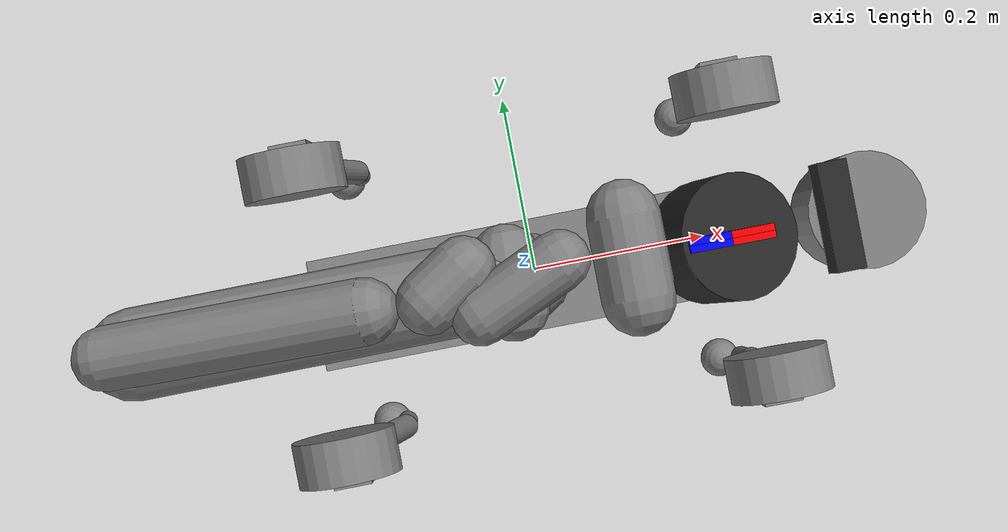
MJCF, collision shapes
<mujoco model="go2">
  <compiler angle="radian"/>

  <option impratio="100" cone="elliptic"/>

  <size nkey="2"/>

  <default>
    <default class="go2">
      <joint armature="0.01" damping="0.1" frictionloss="0.2"/>
      <geom condim="1" friction="0.4" margin="0.001"/>
      <general ctrlrange="-23.7 23.7"/>
      <default class="abduction">
        <joint range="-1.0472 1.0472"/>
      </default>
      <default class="hip">
        <default class="front_hip">
          <joint range="-1.5708 3.4907"/>
        </default>
        <default class="back_hip">
          <joint range="-0.5236 4.5379"/>
        </default>
      </default>
      <default class="knee">
        <joint range="-2.7227 -0.83776"/>
        <general ctrlrange="-45.43 45.43"/>
      </default>
      <default class="visual">
        <geom type="mesh" contype="0" conaffinity="0" group="2"/>
      </default>
      <default class="collision">
        <geom group="3"/>
        <default class="foot">
          <geom size="0.022 0 0" condim="6" priority="1" friction="0.8 0.02 0.01"/>
        </default>
      </default>
    </default>
    <default class="piper_main">
      <default class="piper_piper">
        <joint armature="0.005" frictionloss="0.3"/>
        <general forcerange="-100 100" biastype="affine" biasprm="0 -1"/>
        <default class="piper_finger">
          <joint type="slide" frictionloss="0"/>
          <general forcerange="-10 10"/>
        </default>
        <default class="piper_visual">
          <geom type="mesh" contype="0" conaffinity="0" group="2" density="0"/>
        </default>
        <default class="piper_collision">
          <geom type="capsule" group="3"/>
        </default>
      </default>
    </default>
  </default>

  <asset>
    <material name="metal" rgba="0.9 0.95 0.95 1"/>
    <material name="black" rgba="0 0 0 1"/>
    <material name="white"/>
    <material name="gray" rgba="0.671705 0.692426 0.77427 1"/>
    <material name="piper_gray_mat" rgba="0.59 0.59 0.59 1"/>
    <material name="piper_light_gray_mat" rgba="0.98 0.98 0.98 1"/>
    <material name="piper_light_medium_gray_mat" rgba="0.85 0.85 0.85 1"/>
    <material name="piper_dark_gray_mat" rgba="0.086 0.086 0.086 1"/>
    <material name="piper_darker_gray_mat" rgba="0.14 0.14 0.14 1"/>
    <material name="piper_white_mat"/>
    <material name="piper_red_mat" rgba="0.82 0.15 0.15 1"/>
    <material name="piper_black_mat" rgba="0 0 0 1"/>
    <material name="piper_light_blue" rgba="0.79 0.82 0.93 1"/>
    <mesh name="base_0" file="/media/fishyu/fish-14tb-2/YuXi/go2armagent/vector-os-nano/vector_os_nano/hardware/sim/mjcf/go2/assets/base_0.obj"/>
    <mesh name="base_1" file="/media/fishyu/fish-14tb-2/YuXi/go2armagent/vector-os-nano/vector_os_nano/hardware/sim/mjcf/go2/assets/base_1.obj"/>
    <mesh name="base_2" file="/media/fishyu/fish-14tb-2/YuXi/go2armagent/vector-os-nano/vector_os_nano/hardware/sim/mjcf/go2/assets/base_2.obj"/>
    <mesh name="base_3" file="/media/fishyu/fish-14tb-2/YuXi/go2armagent/vector-os-nano/vector_os_nano/hardware/sim/mjcf/go2/assets/base_3.obj"/>
    <mesh name="base_4" file="/media/fishyu/fish-14tb-2/YuXi/go2armagent/vector-os-nano/vector_os_nano/hardware/sim/mjcf/go2/assets/base_4.obj"/>
    <mesh name="hip_0" file="/media/fishyu/fish-14tb-2/YuXi/go2armagent/vector-os-nano/vector_os_nano/hardware/sim/mjcf/go2/assets/hip_0.obj"/>
    <mesh name="hip_1" file="/media/fishyu/fish-14tb-2/YuXi/go2armagent/vector-os-nano/vector_os_nano/hardware/sim/mjcf/go2/assets/hip_1.obj"/>
    <mesh name="thigh_0" file="/media/fishyu/fish-14tb-2/YuXi/go2armagent/vector-os-nano/vector_os_nano/hardware/sim/mjcf/go2/assets/thigh_0.obj"/>
    <mesh name="thigh_1" file="/media/fishyu/fish-14tb-2/YuXi/go2armagent/vector-os-nano/vector_os_nano/hardware/sim/mjcf/go2/assets/thigh_1.obj"/>
    <mesh name="thigh_mirror_0" file="/media/fishyu/fish-14tb-2/YuXi/go2armagent/vector-os-nano/vector_os_nano/hardware/sim/mjcf/go2/assets/thigh_mirror_0.obj"/>
    <mesh name="thigh_mirror_1" file="/media/fishyu/fish-14tb-2/YuXi/go2armagent/vector-os-nano/vector_os_nano/hardware/sim/mjcf/go2/assets/thigh_mirror_1.obj"/>
    <mesh name="calf_0" file="/media/fishyu/fish-14tb-2/YuXi/go2armagent/vector-os-nano/vector_os_nano/hardware/sim/mjcf/go2/assets/calf_0.obj"/>
    <mesh name="calf_1" file="/media/fishyu/fish-14tb-2/YuXi/go2armagent/vector-os-nano/vector_os_nano/hardware/sim/mjcf/go2/assets/calf_1.obj"/>
    <mesh name="calf_mirror_0" file="/media/fishyu/fish-14tb-2/YuXi/go2armagent/vector-os-nano/vector_os_nano/hardware/sim/mjcf/go2/assets/calf_mirror_0.obj"/>
    <mesh name="calf_mirror_1" file="/media/fishyu/fish-14tb-2/YuXi/go2armagent/vector-os-nano/vector_os_nano/hardware/sim/mjcf/go2/assets/calf_mirror_1.obj"/>
    <mesh name="foot" file="/media/fishyu/fish-14tb-2/YuXi/go2armagent/vector-os-nano/vector_os_nano/hardware/sim/mjcf/go2/assets/foot.obj"/>
    <mesh name="piper_link2_0" file="/media/fishyu/fish-14tb-2/YuXi/go2armagent/vector-os-nano/vector_os_nano/hardware/sim/mjcf/piper/assets/link2_0.obj"/>
    <mesh name="piper_link2_1" file="/media/fishyu/fish-14tb-2/YuXi/go2armagent/vector-os-nano/vector_os_nano/hardware/sim/mjcf/piper/assets/link2_1.obj"/>
    <mesh name="piper_link2_2" file="/media/fishyu/fish-14tb-2/YuXi/go2armagent/vector-os-nano/vector_os_nano/hardware/sim/mjcf/piper/assets/link2_2.obj"/>
    <mesh name="piper_link2_3" file="/media/fishyu/fish-14tb-2/YuXi/go2armagent/vector-os-nano/vector_os_nano/hardware/sim/mjcf/piper/assets/link2_3.obj"/>
    <mesh name="piper_link2_4" file="/media/fishyu/fish-14tb-2/YuXi/go2armagent/vector-os-nano/vector_os_nano/hardware/sim/mjcf/piper/assets/link2_4.obj"/>
    <mesh name="piper_link2_5" file="/media/fishyu/fish-14tb-2/YuXi/go2armagent/vector-os-nano/vector_os_nano/hardware/sim/mjcf/piper/assets/link2_5.obj"/>
    <mesh name="piper_link2_6" file="/media/fishyu/fish-14tb-2/YuXi/go2armagent/vector-os-nano/vector_os_nano/hardware/sim/mjcf/piper/assets/link2_6.obj"/>
    <mesh name="piper_link2_7" file="/media/fishyu/fish-14tb-2/YuXi/go2armagent/vector-os-nano/vector_os_nano/hardware/sim/mjcf/piper/assets/link2_7.obj"/>
    <mesh name="piper_link2_8" file="/media/fishyu/fish-14tb-2/YuXi/go2armagent/vector-os-nano/vector_os_nano/hardware/sim/mjcf/piper/assets/link2_8.obj"/>
    <mesh name="piper_link2_9" file="/media/fishyu/fish-14tb-2/YuXi/go2armagent/vector-os-nano/vector_os_nano/hardware/sim/mjcf/piper/assets/link2_9.obj"/>
    <mesh name="piper_link2_10" file="/media/fishyu/fish-14tb-2/YuXi/go2armagent/vector-os-nano/vector_os_nano/hardware/sim/mjcf/piper/assets/link2_10.obj"/>
    <mesh name="piper_link2_11" file="/media/fishyu/fish-14tb-2/YuXi/go2armagent/vector-os-nano/vector_os_nano/hardware/sim/mjcf/piper/assets/link2_11.obj"/>
    <mesh name="piper_link2_12" file="/media/fishyu/fish-14tb-2/YuXi/go2armagent/vector-os-nano/vector_os_nano/hardware/sim/mjcf/piper/assets/link2_12.obj"/>
    <mesh name="piper_link2_13" file="/media/fishyu/fish-14tb-2/YuXi/go2armagent/vector-os-nano/vector_os_nano/hardware/sim/mjcf/piper/assets/link2_13.obj"/>
    <mesh name="piper_link2_14" file="/media/fishyu/fish-14tb-2/YuXi/go2armagent/vector-os-nano/vector_os_nano/hardware/sim/mjcf/piper/assets/link2_14.obj"/>
    <mesh name="piper_link2_15" file="/media/fishyu/fish-14tb-2/YuXi/go2armagent/vector-os-nano/vector_os_nano/hardware/sim/mjcf/piper/assets/link2_15.obj"/>
    <mesh name="piper_link2_16" file="/media/fishyu/fish-14tb-2/YuXi/go2armagent/vector-os-nano/vector_os_nano/hardware/sim/mjcf/piper/assets/link2_16.obj"/>
    <mesh name="piper_link2_17" file="/media/fishyu/fish-14tb-2/YuXi/go2armagent/vector-os-nano/vector_os_nano/hardware/sim/mjcf/piper/assets/link2_17.obj"/>
    <mesh name="piper_link2_18" file="/media/fishyu/fish-14tb-2/YuXi/go2armagent/vector-os-nano/vector_os_nano/hardware/sim/mjcf/piper/assets/link2_18.obj"/>
    <mesh name="piper_link2_19" file="/media/fishyu/fish-14tb-2/YuXi/go2armagent/vector-os-nano/vector_os_nano/hardware/sim/mjcf/piper/assets/link2_19.obj"/>
    <mesh name="piper_link2_20" file="/media/fishyu/fish-14tb-2/YuXi/go2armagent/vector-os-nano/vector_os_nano/hardware/sim/mjcf/piper/assets/link2_20.obj"/>
    <mesh name="piper_link2_21" file="/media/fishyu/fish-14tb-2/YuXi/go2armagent/vector-os-nano/vector_os_nano/hardware/sim/mjcf/piper/assets/link2_21.obj"/>
    <mesh name="piper_link2_22" file="/media/fishyu/fish-14tb-2/YuXi/go2armagent/vector-os-nano/vector_os_nano/hardware/sim/mjcf/piper/assets/link2_22.obj"/>
    <mesh name="piper_link2_23" file="/media/fishyu/fish-14tb-2/YuXi/go2armagent/vector-os-nano/vector_os_nano/hardware/sim/mjcf/piper/assets/link2_23.obj"/>
    <mesh name="piper_link2_24" file="/media/fishyu/fish-14tb-2/YuXi/go2armagent/vector-os-nano/vector_os_nano/hardware/sim/mjcf/piper/assets/link2_24.obj"/>
    <mesh name="piper_link2_25" file="/media/fishyu/fish-14tb-2/YuXi/go2armagent/vector-os-nano/vector_os_nano/hardware/sim/mjcf/piper/assets/link2_25.obj"/>
    <mesh name="piper_link2_26" file="/media/fishyu/fish-14tb-2/YuXi/go2armagent/vector-os-nano/vector_os_nano/hardware/sim/mjcf/piper/assets/link2_26.obj"/>
    <mesh name="piper_link2_27" file="/media/fishyu/fish-14tb-2/YuXi/go2armagent/vector-os-nano/vector_os_nano/hardware/sim/mjcf/piper/assets/link2_27.obj"/>
    <mesh name="piper_link2_28" file="/media/fishyu/fish-14tb-2/YuXi/go2armagent/vector-os-nano/vector_os_nano/hardware/sim/mjcf/piper/assets/link2_28.obj"/>
    <mesh name="piper_link2_29" file="/media/fishyu/fish-14tb-2/YuXi/go2armagent/vector-os-nano/vector_os_nano/hardware/sim/mjcf/piper/assets/link2_29.obj"/>
    <mesh name="piper_link2_30" file="/media/fishyu/fish-14tb-2/YuXi/go2armagent/vector-os-nano/vector_os_nano/hardware/sim/mjcf/piper/assets/link2_30.obj"/>
    <mesh name="piper_link2_31" file="/media/fishyu/fish-14tb-2/YuXi/go2armagent/vector-os-nano/vector_os_nano/hardware/sim/mjcf/piper/assets/link2_31.obj"/>
    <mesh name="piper_link3_0" file="/media/fishyu/fish-14tb-2/YuXi/go2armagent/vector-os-nano/vector_os_nano/hardware/sim/mjcf/piper/assets/link3_0.obj"/>
    <mesh name="piper_link3_1" file="/media/fishyu/fish-14tb-2/YuXi/go2armagent/vector-os-nano/vector_os_nano/hardware/sim/mjcf/piper/assets/link3_1.obj"/>
    <mesh name="piper_link3_2" file="/media/fishyu/fish-14tb-2/YuXi/go2armagent/vector-os-nano/vector_os_nano/hardware/sim/mjcf/piper/assets/link3_2.obj"/>
    <mesh name="piper_link3_3" file="/media/fishyu/fish-14tb-2/YuXi/go2armagent/vector-os-nano/vector_os_nano/hardware/sim/mjcf/piper/assets/link3_3.obj"/>
    <mesh name="piper_link3_4" file="/media/fishyu/fish-14tb-2/YuXi/go2armagent/vector-os-nano/vector_os_nano/hardware/sim/mjcf/piper/assets/link3_4.obj"/>
    <mesh name="piper_link3_5" file="/media/fishyu/fish-14tb-2/YuXi/go2armagent/vector-os-nano/vector_os_nano/hardware/sim/mjcf/piper/assets/link3_5.obj"/>
    <mesh name="piper_link3_7" file="/media/fishyu/fish-14tb-2/YuXi/go2armagent/vector-os-nano/vector_os_nano/hardware/sim/mjcf/piper/assets/link3_7.obj"/>
    <mesh name="piper_link3_8" file="/media/fishyu/fish-14tb-2/YuXi/go2armagent/vector-os-nano/vector_os_nano/hardware/sim/mjcf/piper/assets/link3_8.obj"/>
    <mesh name="piper_link3_9" file="/media/fishyu/fish-14tb-2/YuXi/go2armagent/vector-os-nano/vector_os_nano/hardware/sim/mjcf/piper/assets/link3_9.obj"/>
    <mesh name="piper_link3_10" file="/media/fishyu/fish-14tb-2/YuXi/go2armagent/vector-os-nano/vector_os_nano/hardware/sim/mjcf/piper/assets/link3_10.obj"/>
    <mesh name="piper_link3_11" file="/media/fishyu/fish-14tb-2/YuXi/go2armagent/vector-os-nano/vector_os_nano/hardware/sim/mjcf/piper/assets/link3_11.obj"/>
    <mesh name="piper_link3_12" file="/media/fishyu/fish-14tb-2/YuXi/go2armagent/vector-os-nano/vector_os_nano/hardware/sim/mjcf/piper/assets/link3_12.obj"/>
    <mesh name="piper_link3_13" file="/media/fishyu/fish-14tb-2/YuXi/go2armagent/vector-os-nano/vector_os_nano/hardware/sim/mjcf/piper/assets/link3_13.obj"/>
    <mesh name="piper_link3_14" file="/media/fishyu/fish-14tb-2/YuXi/go2armagent/vector-os-nano/vector_os_nano/hardware/sim/mjcf/piper/assets/link3_14.obj"/>
    <mesh name="piper_link3_15" file="/media/fishyu/fish-14tb-2/YuXi/go2armagent/vector-os-nano/vector_os_nano/hardware/sim/mjcf/piper/assets/link3_15.obj"/>
    <mesh name="piper_link3_16" file="/media/fishyu/fish-14tb-2/YuXi/go2armagent/vector-os-nano/vector_os_nano/hardware/sim/mjcf/piper/assets/link3_16.obj"/>
    <mesh name="piper_link3_17" file="/media/fishyu/fish-14tb-2/YuXi/go2armagent/vector-os-nano/vector_os_nano/hardware/sim/mjcf/piper/assets/link3_17.obj"/>
    <mesh name="piper_link3_18" file="/media/fishyu/fish-14tb-2/YuXi/go2armagent/vector-os-nano/vector_os_nano/hardware/sim/mjcf/piper/assets/link3_18.obj"/>
    <mesh name="piper_link3_19" file="/media/fishyu/fish-14tb-2/YuXi/go2armagent/vector-os-nano/vector_os_nano/hardware/sim/mjcf/piper/assets/link3_19.obj"/>
    <mesh name="piper_link3_20" file="/media/fishyu/fish-14tb-2/YuXi/go2armagent/vector-os-nano/vector_os_nano/hardware/sim/mjcf/piper/assets/link3_20.obj"/>
    <mesh name="piper_link3_21" file="/media/fishyu/fish-14tb-2/YuXi/go2armagent/vector-os-nano/vector_os_nano/hardware/sim/mjcf/piper/assets/link3_21.obj"/>
    <mesh name="piper_link3_22" file="/media/fishyu/fish-14tb-2/YuXi/go2armagent/vector-os-nano/vector_os_nano/hardware/sim/mjcf/piper/assets/link3_22.obj"/>
    <mesh name="piper_link3_23" file="/media/fishyu/fish-14tb-2/YuXi/go2armagent/vector-os-nano/vector_os_nano/hardware/sim/mjcf/piper/assets/link3_23.obj"/>
    <mesh name="piper_link3_24" file="/media/fishyu/fish-14tb-2/YuXi/go2armagent/vector-os-nano/vector_os_nano/hardware/sim/mjcf/piper/assets/link3_24.obj"/>
    <mesh name="piper_link3_25" file="/media/fishyu/fish-14tb-2/YuXi/go2armagent/vector-os-nano/vector_os_nano/hardware/sim/mjcf/piper/assets/link3_25.obj"/>
    <mesh name="piper_link3_26" file="/media/fishyu/fish-14tb-2/YuXi/go2armagent/vector-os-nano/vector_os_nano/hardware/sim/mjcf/piper/assets/link3_26.obj"/>
    <mesh name="piper_link3_27" file="/media/fishyu/fish-14tb-2/YuXi/go2armagent/vector-os-nano/vector_os_nano/hardware/sim/mjcf/piper/assets/link3_27.obj"/>
    <mesh name="piper_link3_28" file="/media/fishyu/fish-14tb-2/YuXi/go2armagent/vector-os-nano/vector_os_nano/hardware/sim/mjcf/piper/assets/link3_28.obj"/>
    <mesh name="piper_link4_2" file="/media/fishyu/fish-14tb-2/YuXi/go2armagent/vector-os-nano/vector_os_nano/hardware/sim/mjcf/piper/assets/link4_2.obj"/>
    <mesh name="piper_link4_3" file="/media/fishyu/fish-14tb-2/YuXi/go2armagent/vector-os-nano/vector_os_nano/hardware/sim/mjcf/piper/assets/link4_3.obj"/>
    <mesh name="piper_link4_4" file="/media/fishyu/fish-14tb-2/YuXi/go2armagent/vector-os-nano/vector_os_nano/hardware/sim/mjcf/piper/assets/link4_4.obj"/>
    <mesh name="piper_link4_5" file="/media/fishyu/fish-14tb-2/YuXi/go2armagent/vector-os-nano/vector_os_nano/hardware/sim/mjcf/piper/assets/link4_5.obj"/>
    <mesh name="piper_link4_6" file="/media/fishyu/fish-14tb-2/YuXi/go2armagent/vector-os-nano/vector_os_nano/hardware/sim/mjcf/piper/assets/link4_6.obj"/>
    <mesh name="piper_link5_2" file="/media/fishyu/fish-14tb-2/YuXi/go2armagent/vector-os-nano/vector_os_nano/hardware/sim/mjcf/piper/assets/link5_2.obj"/>
    <mesh name="piper_link5_3" file="/media/fishyu/fish-14tb-2/YuXi/go2armagent/vector-os-nano/vector_os_nano/hardware/sim/mjcf/piper/assets/link5_3.obj"/>
    <mesh name="piper_link5_4" file="/media/fishyu/fish-14tb-2/YuXi/go2armagent/vector-os-nano/vector_os_nano/hardware/sim/mjcf/piper/assets/link5_4.obj"/>
    <mesh name="piper_link5_5" file="/media/fishyu/fish-14tb-2/YuXi/go2armagent/vector-os-nano/vector_os_nano/hardware/sim/mjcf/piper/assets/link5_5.obj"/>
    <mesh name="piper_link5_6" file="/media/fishyu/fish-14tb-2/YuXi/go2armagent/vector-os-nano/vector_os_nano/hardware/sim/mjcf/piper/assets/link5_6.obj"/>
    <mesh name="piper_link5_7" file="/media/fishyu/fish-14tb-2/YuXi/go2armagent/vector-os-nano/vector_os_nano/hardware/sim/mjcf/piper/assets/link5_7.obj"/>
    <mesh name="piper_link5_8" file="/media/fishyu/fish-14tb-2/YuXi/go2armagent/vector-os-nano/vector_os_nano/hardware/sim/mjcf/piper/assets/link5_8.obj"/>
    <mesh name="piper_base_link" file="/media/fishyu/fish-14tb-2/YuXi/go2armagent/vector-os-nano/vector_os_nano/hardware/sim/mjcf/piper/assets/base_link.stl"/>
    <mesh name="piper_link1" file="/media/fishyu/fish-14tb-2/YuXi/go2armagent/vector-os-nano/vector_os_nano/hardware/sim/mjcf/piper/assets/link1.stl"/>
    <mesh name="piper_link2" file="/media/fishyu/fish-14tb-2/YuXi/go2armagent/vector-os-nano/vector_os_nano/hardware/sim/mjcf/piper/assets/link2.stl"/>
    <mesh name="piper_link2_gray" file="/media/fishyu/fish-14tb-2/YuXi/go2armagent/vector-os-nano/vector_os_nano/hardware/sim/mjcf/piper/assets/link2_gray.stl"/>
    <mesh name="piper_link3" file="/media/fishyu/fish-14tb-2/YuXi/go2armagent/vector-os-nano/vector_os_nano/hardware/sim/mjcf/piper/assets/link3.stl"/>
    <mesh name="piper_link4" file="/media/fishyu/fish-14tb-2/YuXi/go2armagent/vector-os-nano/vector_os_nano/hardware/sim/mjcf/piper/assets/link4.stl"/>
    <mesh name="piper_link5" file="/media/fishyu/fish-14tb-2/YuXi/go2armagent/vector-os-nano/vector_os_nano/hardware/sim/mjcf/piper/assets/link5.stl"/>
    <mesh name="piper_link6" file="/media/fishyu/fish-14tb-2/YuXi/go2armagent/vector-os-nano/vector_os_nano/hardware/sim/mjcf/piper/assets/link6.stl"/>
    <mesh name="piper_link7" file="/media/fishyu/fish-14tb-2/YuXi/go2armagent/vector-os-nano/vector_os_nano/hardware/sim/mjcf/piper/assets/link7.stl"/>
    <mesh name="piper_link8" file="/media/fishyu/fish-14tb-2/YuXi/go2armagent/vector-os-nano/vector_os_nano/hardware/sim/mjcf/piper/assets/link8.stl"/>
  </asset>

  <worldbody>
    <body name="base_link" childclass="go2" pos="0 0 0.445">
      <inertial pos="0.021112 0 -0.005366" quat="-0.000543471 0.713435 -0.00173769 0.700719" mass="6.921" diaginertia="0.107027 0.0980771 0.0244531"/>
      <joint type="free" armature="0" damping="0" frictionloss="0"/>
      <geom class="visual" material="black" mesh="base_0"/>
      <geom class="visual" material="black" mesh="base_1"/>
      <geom class="visual" material="black" mesh="base_2"/>
      <geom class="visual" material="white" mesh="base_3"/>
      <geom class="visual" material="gray" mesh="base_4"/>
      <geom class="collision" size="0.1881 0.04675 0.057" type="box"/>
      <geom class="collision" size="0.05 0.045" pos="0.285 0 0.01" type="cylinder"/>
      <geom class="collision" size="0.047" pos="0.293 0 -0.06"/>
      <site name="imu" pos="-0.02557 0 0.04232"/>
      <body name="mid360_lidar" pos="0.15 0 0.14" quat="0.984813 0 0.173616 0">
        <geom size="0.012 0.04" pos="0 0 -0.04" type="cylinder" contype="0" conaffinity="0" mass="0.05" rgba="0.4 0.4 0.4 1"/>
        <geom size="0.05 0.03" type="cylinder" contype="0" conaffinity="0" mass="0.265" rgba="0.15 0.15 0.15 1"/>
        <site name="mid360_site" pos="0 0 0.03"/>
      </body>
      <body name="d435_camera" pos="0.25 0 0.1" quat="0.999054 0 0.0434863 0">
        <geom size="0.0125 0.045 0.0125" type="box" contype="0" conaffinity="0" mass="0.072" rgba="0.15 0.15 0.15 1"/>
        <geom size="0.008 0.005" pos="0 0.02 0" quat="0.707105 0.707108 0 0" type="cylinder" contype="0" conaffinity="0" rgba="0.1 0.1 0.3 1"/>
        <geom size="0.008 0.005" pos="0 -0.02 0" quat="0.707105 0.707108 0 0" type="cylinder" contype="0" conaffinity="0" rgba="0.1 0.1 0.3 1"/>
        <camera name="d435_rgb" pos="0 0 0" quat="-0.5 -0.5 0.5 0.5" fovy="42"/>
        <camera name="d435_depth" pos="0 0 0" quat="-0.5 -0.5 0.5 0.5" fovy="42"/>
      </body>
      <body name="FL_hip" pos="0.1934 0.0465 0">
        <inertial pos="-0.0054 0.00194 -0.000105" quat="0.497014 0.499245 0.505462 0.498237" mass="0.678" diaginertia="0.00088403 0.000596003 0.000479967"/>
        <joint name="FL_hip_joint" class="abduction" pos="0 0 0" axis="1 0 0"/>
        <geom class="visual" material="metal" mesh="hip_0"/>
        <geom class="visual" material="gray" mesh="hip_1"/>
        <geom class="collision" size="0.046 0.02" pos="0 0.08 0" quat="0.707107 0.707107 0 0" type="cylinder"/>
        <body name="FL_thigh" pos="0 0.0955 0">
          <inertial pos="-0.00374 -0.0223 -0.0327" quat="0.829533 0.0847635 -0.0200632 0.551623" mass="1.152" diaginertia="0.00594973 0.00584149 0.000878787"/>
          <joint name="FL_thigh_joint" class="front_hip" pos="0 0 0" axis="0 1 0"/>
          <geom class="visual" material="metal" mesh="thigh_0"/>
          <geom class="visual" material="gray" mesh="thigh_1"/>
          <geom class="collision" size="0.1065 0.01225 0.017" pos="0 0 -0.1065" quat="0.707107 0 0.707107 0" type="box"/>
          <body name="FL_calf" pos="0 0 -0.213">
            <inertial pos="0.00629595 -0.000622121 -0.141417" quat="0.710672 0.00154099 -0.00450087 0.703508" mass="0.241352" diaginertia="0.0014901 0.00146356 5.31397e-05"/>
            <joint name="FL_calf_joint" class="knee" pos="0 0 0" axis="0 1 0"/>
            <geom class="visual" material="gray" mesh="calf_0"/>
            <geom class="visual" material="black" mesh="calf_1"/>
            <geom class="collision" size="0.012 0.06" pos="0.008 0 -0.06" quat="0.994493 0 -0.104807 0" type="cylinder"/>
            <geom class="collision" size="0.011 0.0325" pos="0.02 0 -0.148" quat="0.999688 0 0.0249974 0" type="cylinder"/>
            <geom class="visual" pos="0 0 -0.213" quat="1 0 0 0" material="black" mesh="foot"/>
            <geom name="FL" class="foot" pos="-0.002 0 -0.213"/>
            <body name="FL_foot" pos="0 0 -0.213"/>
          </body>
        </body>
      </body>
      <body name="FR_hip" pos="0.1934 -0.0465 0">
        <inertial pos="-0.0054 -0.00194 -0.000105" quat="0.498237 0.505462 0.499245 0.497014" mass="0.678" diaginertia="0.00088403 0.000596003 0.000479967"/>
        <joint name="FR_hip_joint" class="abduction" pos="0 0 0" axis="1 0 0"/>
        <geom class="visual" quat="4.63268e-05 1 0 0" material="metal" mesh="hip_0"/>
        <geom class="visual" quat="4.63268e-05 1 0 0" material="gray" mesh="hip_1"/>
        <geom class="collision" size="0.046 0.02" pos="0 -0.08 0" quat="0.707107 0.707107 0 0" type="cylinder"/>
        <body name="FR_thigh" pos="0 -0.0955 0">
          <inertial pos="-0.00374 0.0223 -0.0327" quat="0.551623 -0.0200632 0.0847635 0.829533" mass="1.152" diaginertia="0.00594973 0.00584149 0.000878787"/>
          <joint name="FR_thigh_joint" class="front_hip" pos="0 0 0" axis="0 1 0"/>
          <geom class="visual" material="metal" mesh="thigh_mirror_0"/>
          <geom class="visual" material="gray" mesh="thigh_mirror_1"/>
          <geom class="collision" size="0.1065 0.01225 0.017" pos="0 0 -0.1065" quat="0.707107 0 0.707107 0" type="box"/>
          <body name="FR_calf" pos="0 0 -0.213">
            <inertial pos="0.00629595 0.000622121 -0.141417" quat="0.703508 -0.00450087 0.00154099 0.710672" mass="0.241352" diaginertia="0.0014901 0.00146356 5.31397e-05"/>
            <joint name="FR_calf_joint" class="knee" pos="0 0 0" axis="0 1 0"/>
            <geom class="visual" material="gray" mesh="calf_mirror_0"/>
            <geom class="visual" material="black" mesh="calf_mirror_1"/>
            <geom class="collision" size="0.013 0.06" pos="0.01 0 -0.06" quat="0.995004 0 -0.0998334 0" type="cylinder"/>
            <geom class="collision" size="0.011 0.0325" pos="0.02 0 -0.148" quat="0.999688 0 0.0249974 0" type="cylinder"/>
            <geom class="visual" pos="0 0 -0.213" quat="1 0 0 0" material="black" mesh="foot"/>
            <geom name="FR" class="foot" pos="-0.002 0 -0.213"/>
            <body name="FR_foot" pos="0 0 -0.213"/>
          </body>
        </body>
      </body>
      <body name="RL_hip" pos="-0.1934 0.0465 0">
        <inertial pos="0.0054 0.00194 -0.000105" quat="0.505462 0.498237 0.497014 0.499245" mass="0.678" diaginertia="0.00088403 0.000596003 0.000479967"/>
        <joint name="RL_hip_joint" class="abduction" pos="0 0 0" axis="1 0 0"/>
        <geom class="visual" quat="4.63268e-05 0 1 0" material="metal" mesh="hip_0"/>
        <geom class="visual" quat="4.63268e-05 0 1 0" material="gray" mesh="hip_1"/>
        <geom class="collision" size="0.046 0.02" pos="0 0.08 0" quat="0.707107 0.707107 0 0" type="cylinder"/>
        <body name="RL_thigh" pos="0 0.0955 0">
          <inertial pos="-0.00374 -0.0223 -0.0327" quat="0.829533 0.0847635 -0.0200632 0.551623" mass="1.152" diaginertia="0.00594973 0.00584149 0.000878787"/>
          <joint name="RL_thigh_joint" class="back_hip" pos="0 0 0" axis="0 1 0"/>
          <geom class="visual" material="metal" mesh="thigh_0"/>
          <geom class="visual" material="gray" mesh="thigh_1"/>
          <geom class="collision" size="0.1065 0.01225 0.017" pos="0 0 -0.1065" quat="0.707107 0 0.707107 0" type="box"/>
          <body name="RL_calf" pos="0 0 -0.213">
            <inertial pos="0.00629595 -0.000622121 -0.141417" quat="0.710672 0.00154099 -0.00450087 0.703508" mass="0.241352" diaginertia="0.0014901 0.00146356 5.31397e-05"/>
            <joint name="RL_calf_joint" class="knee" pos="0 0 0" axis="0 1 0"/>
            <geom class="visual" material="gray" mesh="calf_0"/>
            <geom class="visual" material="black" mesh="calf_1"/>
            <geom class="collision" size="0.013 0.06" pos="0.01 0 -0.06" quat="0.995004 0 -0.0998334 0" type="cylinder"/>
            <geom class="collision" size="0.011 0.0325" pos="0.02 0 -0.148" quat="0.999688 0 0.0249974 0" type="cylinder"/>
            <geom class="visual" pos="0 0 -0.213" quat="1 0 0 0" material="black" mesh="foot"/>
            <geom name="RL" class="foot" pos="-0.002 0 -0.213"/>
            <body name="RL_foot" pos="0 0 -0.213"/>
          </body>
        </body>
      </body>
      <body name="RR_hip" pos="-0.1934 -0.0465 0">
        <inertial pos="0.0054 -0.00194 -0.000105" quat="0.499245 0.497014 0.498237 0.505462" mass="0.678" diaginertia="0.00088403 0.000596003 0.000479967"/>
        <joint name="RR_hip_joint" class="abduction" pos="0 0 0" axis="1 0 0"/>
        <geom class="visual" quat="2.14617e-09 4.63268e-05 4.63268e-05 -1" material="metal" mesh="hip_0"/>
        <geom class="visual" quat="2.14617e-09 4.63268e-05 4.63268e-05 -1" material="gray" mesh="hip_1"/>
        <geom class="collision" size="0.046 0.02" pos="0 -0.08 0" quat="0.707107 0.707107 0 0" type="cylinder"/>
        <body name="RR_thigh" pos="0 -0.0955 0">
          <inertial pos="-0.00374 0.0223 -0.0327" quat="0.551623 -0.0200632 0.0847635 0.829533" mass="1.152" diaginertia="0.00594973 0.00584149 0.000878787"/>
          <joint name="RR_thigh_joint" class="back_hip" pos="0 0 0" axis="0 1 0"/>
          <geom class="visual" material="metal" mesh="thigh_mirror_0"/>
          <geom class="visual" material="gray" mesh="thigh_mirror_1"/>
          <geom class="collision" size="0.1065 0.01225 0.017" pos="0 0 -0.1065" quat="0.707107 0 0.707107 0" type="box"/>
          <body name="RR_calf" pos="0 0 -0.213">
            <inertial pos="0.00629595 0.000622121 -0.141417" quat="0.703508 -0.00450087 0.00154099 0.710672" mass="0.241352" diaginertia="0.0014901 0.00146356 5.31397e-05"/>
            <joint name="RR_calf_joint" class="knee" pos="0 0 0" axis="0 1 0"/>
            <geom class="visual" material="gray" mesh="calf_mirror_0"/>
            <geom class="visual" material="black" mesh="calf_mirror_1"/>
            <geom class="collision" size="0.013 0.06" pos="0.01 0 -0.06" quat="0.995004 0 -0.0998334 0" type="cylinder"/>
            <geom class="collision" size="0.011 0.0325" pos="0.02 0 -0.148" quat="0.999688 0 0.0249974 0" type="cylinder"/>
            <geom class="visual" pos="0 0 -0.213" quat="1 0 0 0" material="black" mesh="foot"/>
            <geom name="RR" class="foot" pos="-0.002 0 -0.213"/>
            <body name="RR_foot" pos="0 0 -0.213"/>
          </body>
        </body>
      </body>
      <light name="piper_spotlight" target="piper_link8" pos="-0.02 0 1.06" dir="0 0 -1" mode="targetbodycom"/>
      <body name="piper_base_link" childclass="piper_piper" pos="-0.02 0 0.06" gravcomp="1">
        <inertial pos="-0.00979275 1.82906e-06 0.04101" quat="0.692988 -0.137524 -0.137826 0.69416" mass="0.162549" diaginertia="0.000269445 0.000227478 0.000221437"/>
        <geom class="piper_visual" material="piper_gray_mat" mesh="piper_base_link"/>
        <geom class="piper_collision" size="0.0357691 0.024065" pos="-0.0107422 1.86147e-06 0.0395259" quat="0.536726 0.460902 0.460261 0.536334"/>
        <body name="piper_link1" pos="0 0 0.123" quat="0.707105 0 0 -0.707108" gravcomp="1">
          <inertial pos="0.00131676 0.000310289 -0.00922875" quat="0.557105 0.432155 0.377373 0.600388" mass="0.097868" diaginertia="9.25942e-05 8.3083e-05 7.69469e-05"/>
          <joint name="piper_joint1" pos="0 0 0" axis="0 0 1" range="-2.618 2.618"/>
          <geom class="piper_visual" material="piper_gray_mat" mesh="piper_link1"/>
          <geom class="piper_collision" size="0.0271645 0.0182943" pos="0.00101464 -0.000188218 -0.00563398" quat="0.519141 0.484098 0.499512 0.496617"/>
          <body name="piper_link2" quat="0.499998 0.5 -0.500002 -0.5" gravcomp="1">
            <inertial pos="0.148794 -0.00242027 0.00175155" quat="-0.0249063 0.70684 0.00803509 0.706889" mass="0.290889" diaginertia="0.00177549 0.00173142 0.00014552"/>
            <joint name="piper_joint2" pos="0 0 0" axis="0 0 1" range="0 3.14"/>
            <geom class="piper_visual" material="piper_gray_mat" mesh="piper_link2_0"/>
            <geom class="piper_visual" material="piper_darker_gray_mat" mesh="piper_link2_1"/>
            <geom class="piper_visual" material="piper_darker_gray_mat" mesh="piper_link2_2"/>
            <geom class="piper_visual" material="piper_dark_gray_mat" mesh="piper_link2_3"/>
            <geom class="piper_visual" material="piper_dark_gray_mat" mesh="piper_link2_4"/>
            <geom class="piper_visual" material="piper_red_mat" mesh="piper_link2_5"/>
            <geom class="piper_visual" material="piper_dark_gray_mat" mesh="piper_link2_6"/>
            <geom class="piper_visual" material="piper_gray_mat" mesh="piper_link2_7"/>
            <geom class="piper_visual" material="piper_red_mat" mesh="piper_link2_8"/>
            <geom class="piper_visual" material="piper_red_mat" mesh="piper_link2_9"/>
            <geom class="piper_visual" material="piper_gray_mat" mesh="piper_link2_10"/>
            <geom class="piper_visual" material="piper_red_mat" mesh="piper_link2_11"/>
            <geom class="piper_visual" material="piper_red_mat" mesh="piper_link2_12"/>
            <geom class="piper_visual" material="piper_red_mat" mesh="piper_link2_13"/>
            <geom class="piper_visual" material="piper_red_mat" mesh="piper_link2_14"/>
            <geom class="piper_visual" material="piper_red_mat" mesh="piper_link2_15"/>
            <geom class="piper_visual" material="piper_red_mat" mesh="piper_link2_16"/>
            <geom class="piper_visual" material="piper_red_mat" mesh="piper_link2_17"/>
            <geom class="piper_visual" material="piper_red_mat" mesh="piper_link2_18"/>
            <geom class="piper_visual" material="piper_red_mat" mesh="piper_link2_19"/>
            <geom class="piper_visual" material="piper_red_mat" mesh="piper_link2_20"/>
            <geom class="piper_visual" material="piper_gray_mat" mesh="piper_link2_21"/>
            <geom class="piper_visual" material="piper_red_mat" mesh="piper_link2_22"/>
            <geom class="piper_visual" material="piper_red_mat" mesh="piper_link2_23"/>
            <geom class="piper_visual" material="piper_red_mat" mesh="piper_link2_24"/>
            <geom class="piper_visual" material="piper_dark_gray_mat" mesh="piper_link2_25"/>
            <geom class="piper_visual" material="piper_red_mat" mesh="piper_link2_26"/>
            <geom class="piper_visual" material="piper_darker_gray_mat" mesh="piper_link2_27"/>
            <geom class="piper_visual" material="piper_darker_gray_mat" mesh="piper_link2_28"/>
            <geom class="piper_visual" material="piper_darker_gray_mat" mesh="piper_link2_29"/>
            <geom class="piper_visual" material="piper_darker_gray_mat" mesh="piper_link2_30"/>
            <geom class="piper_visual" material="piper_light_medium_gray_mat" mesh="piper_link2_31"/>
            <geom class="piper_collision" size="0.0354545 0.136662" pos="0.152179 -0.00040773 0.000313761" quat="0.486718 0.483816 0.516937 0.511668"/>
            <body name="piper_link3" pos="0.28358 0.028726 0" quat="0.998726 0 0 0.0504536" gravcomp="1">
              <inertial pos="-0.0996835 0.0349477 0.000508026" quat="0.0777021 0.702287 -0.0990541 0.700674" mass="0.290848" diaginertia="0.000241946 0.000222224 0.000100384"/>
              <joint name="piper_joint3" pos="0 0 0" axis="0 0 1" range="-2.697 0"/>
              <geom class="piper_visual" material="piper_darker_gray_mat" mesh="piper_link3_0"/>
              <geom class="piper_visual" material="piper_red_mat" mesh="piper_link3_1"/>
              <geom class="piper_visual" material="piper_gray_mat" mesh="piper_link3_2"/>
              <geom class="piper_visual" material="piper_gray_mat" mesh="piper_link3_3"/>
              <geom class="piper_visual" material="piper_gray_mat" mesh="piper_link3_4"/>
              <geom class="piper_visual" material="piper_gray_mat" mesh="piper_link3_5"/>
              <geom class="piper_visual" material="piper_darker_gray_mat" mesh="piper_link3_7"/>
              <geom class="piper_visual" material="piper_white_mat" mesh="piper_link3_8"/>
              <geom class="piper_visual" material="piper_red_mat" mesh="piper_link3_9"/>
              <geom class="piper_visual" material="piper_white_mat" mesh="piper_link3_10"/>
              <geom class="piper_visual" material="piper_white_mat" mesh="piper_link3_11"/>
              <geom class="piper_visual" material="piper_white_mat" mesh="piper_link3_12"/>
              <geom class="piper_visual" material="piper_white_mat" mesh="piper_link3_13"/>
              <geom class="piper_visual" material="piper_gray_mat" mesh="piper_link3_14"/>
              <geom class="piper_visual" material="piper_gray_mat" mesh="piper_link3_15"/>
              <geom class="piper_visual" material="piper_gray_mat" mesh="piper_link3_16"/>
              <geom class="piper_visual" material="piper_gray_mat" mesh="piper_link3_17"/>
              <geom class="piper_visual" material="piper_gray_mat" mesh="piper_link3_18"/>
              <geom class="piper_visual" material="piper_gray_mat" mesh="piper_link3_19"/>
              <geom class="piper_visual" material="piper_gray_mat" mesh="piper_link3_20"/>
              <geom class="piper_visual" material="piper_gray_mat" mesh="piper_link3_21"/>
              <geom class="piper_visual" material="piper_gray_mat" mesh="piper_link3_22"/>
              <geom class="piper_visual" material="piper_gray_mat" mesh="piper_link3_23"/>
              <geom class="piper_visual" material="piper_gray_mat" mesh="piper_link3_24"/>
              <geom class="piper_visual" material="piper_gray_mat" mesh="piper_link3_25"/>
              <geom class="piper_visual" material="piper_gray_mat" mesh="piper_link3_26"/>
              <geom class="piper_visual" material="piper_gray_mat" mesh="piper_link3_27"/>
              <geom class="piper_visual" material="piper_gray_mat" mesh="piper_link3_28"/>
              <geom class="piper_collision" size="0.0246371 0.102428" pos="-0.0767504 0.02843 0.000535139" quat="0.569519 0.572735 0.410029 0.423674"/>
              <body name="piper_link4" pos="-0.24221 0.068514 0" quat="0.544767 -0.544769 -0.450809 0.450808" gravcomp="1">
                <inertial pos="0.000276465 -0.00102804 -0.00472831" quat="0.492305 0.505285 0.503294 0.499017" mass="0.127087" diaginertia="4.87057e-05 4.10595e-05 3.82001e-05"/>
                <joint name="piper_joint4" pos="0 0 0" axis="0 0 1" range="-1.832 1.832"/>
                <geom class="piper_visual" material="piper_gray_mat" mesh="piper_link4_2"/>
                <geom class="piper_visual" material="piper_darker_gray_mat" mesh="piper_link4_3"/>
                <geom class="piper_visual" material="piper_gray_mat" mesh="piper_link4_4"/>
                <geom class="piper_visual" material="piper_gray_mat" mesh="piper_link4_5"/>
                <geom class="piper_visual" material="piper_gray_mat" mesh="piper_link4_6"/>
                <geom class="piper_collision" size="0.0238936 0.016908" pos="0.000761852 -0.00691041 -0.0082418" quat="0.955364 0.287171 -0.0612394 0.03258"/>
                <body name="piper_link5" quat="0.707105 0.707108 0 0" gravcomp="1">
                  <inertial pos="8.82262e-05 0.0566829 -0.0019612" quat="0.507447 0.490986 0.506887 0.494466" mass="0.144711" diaginertia="0.001 0.001 0.001"/>
                  <joint name="piper_joint5" pos="0 0 0" axis="0 0 1" range="-1.22 1.22"/>
                  <geom class="piper_visual" material="piper_black_mat" mesh="piper_link5_2"/>
                  <geom class="piper_visual" material="piper_black_mat" mesh="piper_link5_3"/>
                  <geom class="piper_visual" material="piper_darker_gray_mat" mesh="piper_link5_4"/>
                  <geom class="piper_visual" material="piper_gray_mat" mesh="piper_link5_5"/>
                  <geom class="piper_visual" material="piper_light_gray_mat" mesh="piper_link5_6"/>
                  <geom class="piper_visual" material="piper_gray_mat" mesh="piper_link5_7"/>
                  <geom class="piper_visual" material="piper_gray_mat" mesh="piper_link5_8"/>
                  <geom class="piper_collision" size="0.0224253 0.0337559" pos="0.000165456 0.0435329 -0.00463601" quat="0.351922 0.544329 -0.638336 0.415191"/>
                  <body name="piper_link6" pos="0 0.091 0.0014165" quat="0 0 -0.707105 -0.707108" gravcomp="1">
                    <inertial pos="0.0010312 0.0121761 0.0315481" quat="0.0230402 0.707091 0.0373344 0.70576" mass="1.2" diaginertia="0.001 0.001 0.001"/>
                    <joint name="piper_joint6" pos="0 0 0" axis="0 0 1" range="-3.14 3.14"/>
                    <geom class="piper_visual" quat="0.707105 0 0 0.707108" material="piper_gray_mat" mesh="piper_link6"/>
                    <geom class="piper_collision" size="0.0264136 0.0296273" pos="-0.000316499 -5.15037e-08 0.0332864" quat="0.00759712 -0.00727331 0.707074 0.707062"/>
                    <site name="piper_ee_site" pos="0 0 0.13" rgba="1 1 0 0.6"/>
                    <body name="piper_link7" pos="0 0 0.13503" quat="1.89468e-08 1.89469e-08 0.707108 0.707105" gravcomp="1">
                      <inertial pos="-0.000277778 -0.0467673 -0.00921029" quat="0.46134 0.536174 -0.553273 0.439968" mass="0.0264823" diaginertia="0.001 0.001 0.001"/>
                      <joint name="piper_joint7" class="piper_finger" pos="0 0 0" axis="0 0 -1" range="0 0.035"/>
                      <geom class="piper_visual" material="piper_gray_mat" mesh="piper_link7"/>
                      <geom class="piper_collision" size="0.012 0.015 0.0025" pos="0 -0.015 -0.0025" type="box" rgba="1 0 0 0.2"/>
                      <geom class="piper_collision" size="0.015 0.015 0.0025" pos="0 -0.045 -0.0025" type="box" rgba="0 0 1 0.2"/>
                    </body>
                    <body name="piper_link8" pos="0 0 0.13503" quat="1.89468e-08 -1.89469e-08 -0.707108 0.707105" gravcomp="1">
                      <inertial pos="0.000277817 0.0467674 -0.0092103" quat="0.553273 0.439968 -0.46134 0.536174" mass="0.0264822" diaginertia="0.001 0.001 0.001"/>
                      <joint name="piper_joint8" class="piper_finger" pos="0 0 0" axis="0 0 1" range="-0.035 0"/>
                      <geom class="piper_visual" material="piper_gray_mat" mesh="piper_link8"/>
                      <geom class="piper_collision" size="0.012 0.015 0.0025" pos="0 0.015 -0.0025" type="box" rgba="1 0 0 0.2"/>
                      <geom class="piper_collision" size="0.015 0.015 0.0025" pos="0 0.045 -0.0025" type="box" rgba="0 0 1 0.2"/>
                    </body>
                  </body>
                </body>
              </body>
            </body>
          </body>
        </body>
      </body>
    </body>
  </worldbody>

  <contact>
    <exclude body1="piper_base_link" body2="piper_link1"/>
  </contact>

  <equality>
    <joint joint1="piper_joint8" joint2="piper_joint7" polycoef="0 -1 0 0 0"/>
  </equality>

  <actuator>
    <general name="FR_hip" class="abduction" joint="FR_hip_joint"/>
    <general name="FR_thigh" class="hip" joint="FR_thigh_joint"/>
    <general name="FR_calf" class="knee" joint="FR_calf_joint"/>
    <general name="FL_hip" class="abduction" joint="FL_hip_joint"/>
    <general name="FL_thigh" class="hip" joint="FL_thigh_joint"/>
    <general name="FL_calf" class="knee" joint="FL_calf_joint"/>
    <general name="RR_hip" class="abduction" joint="RR_hip_joint"/>
    <general name="RR_thigh" class="hip" joint="RR_thigh_joint"/>
    <general name="RR_calf" class="knee" joint="RR_calf_joint"/>
    <general name="RL_hip" class="abduction" joint="RL_hip_joint"/>
    <general name="RL_thigh" class="hip" joint="RL_thigh_joint"/>
    <general name="RL_calf" class="knee" joint="RL_calf_joint"/>
    <general name="piper_joint1" class="piper_piper" joint="piper_joint1" ctrlrange="-2.618 2.618" gainprm="80" biasprm="0 -80 -5"/>
    <general name="piper_joint2" class="piper_piper" joint="piper_joint2" ctrlrange="0 3.14" gainprm="80" biasprm="0 -80 -5"/>
    <general name="piper_joint3" class="piper_piper" joint="piper_joint3" ctrlrange="-2.697 0" gainprm="80" biasprm="0 -80 -5"/>
    <general name="piper_joint4" class="piper_piper" joint="piper_joint4" ctrlrange="-1.832 1.832" gainprm="40" biasprm="0 -40 -5"/>
    <general name="piper_joint5" class="piper_piper" joint="piper_joint5" ctrlrange="-1.22 1.22" gainprm="10" biasprm="0 -10 -1.5"/>
    <general name="piper_joint6" class="piper_piper" joint="piper_joint6" ctrlrange="-3.14 3.14" gainprm="10" biasprm="0 -10 -1.5"/>
    <general name="piper_gripper" class="piper_finger" joint="piper_joint7" ctrlrange="0 0.035" gainprm="40" biasprm="0 -40 -5"/>
  </actuator>

  <sensor>
    <jointpos joint="FR_hip_joint" name="FR_hip_pos"/>
    <jointpos joint="FR_thigh_joint" name="FR_thigh_pos"/>
    <jointpos joint="FR_calf_joint" name="FR_calf_pos"/>
    <jointpos joint="FL_hip_joint" name="FL_hip_pos"/>
    <jointpos joint="FL_thigh_joint" name="FL_thigh_pos"/>
    <jointpos joint="FL_calf_joint" name="FL_calf_pos"/>
    <jointpos joint="RR_hip_joint" name="RR_hip_pos"/>
    <jointpos joint="RR_thigh_joint" name="RR_thigh_pos"/>
    <jointpos joint="RR_calf_joint" name="RR_calf_pos"/>
    <jointpos joint="RL_hip_joint" name="RL_hip_pos"/>
    <jointpos joint="RL_thigh_joint" name="RL_thigh_pos"/>
    <jointpos joint="RL_calf_joint" name="RL_calf_pos"/>
    <jointvel joint="FR_hip_joint" name="FR_hip_vel"/>
    <jointvel joint="FR_thigh_joint" name="FR_thigh_vel"/>
    <jointvel joint="FR_calf_joint" name="FR_calf_vel"/>
    <jointvel joint="FL_hip_joint" name="FL_hip_vel"/>
    <jointvel joint="FL_thigh_joint" name="FL_thigh_vel"/>
    <jointvel joint="FL_calf_joint" name="FL_calf_vel"/>
    <jointvel joint="RR_hip_joint" name="RR_hip_vel"/>
    <jointvel joint="RR_thigh_joint" name="RR_thigh_vel"/>
    <jointvel joint="RR_calf_joint" name="RR_calf_vel"/>
    <jointvel joint="RL_hip_joint" name="RL_hip_vel"/>
    <jointvel joint="RL_thigh_joint" name="RL_thigh_vel"/>
    <jointvel joint="RL_calf_joint" name="RL_calf_vel"/>
    <jointactuatorfrc joint="FR_hip_joint" name="FR_hip_torque" noise="0.01"/>
    <jointactuatorfrc joint="FR_thigh_joint" name="FR_thigh_torque" noise="0.01"/>
    <jointactuatorfrc joint="FR_calf_joint" name="FR_calf_torque" noise="0.01"/>
    <jointactuatorfrc joint="FL_hip_joint" name="FL_hip_torque" noise="0.01"/>
    <jointactuatorfrc joint="FL_thigh_joint" name="FL_thigh_torque" noise="0.01"/>
    <jointactuatorfrc joint="FL_calf_joint" name="FL_calf_torque" noise="0.01"/>
    <jointactuatorfrc joint="RR_hip_joint" name="RR_hip_torque" noise="0.01"/>
    <jointactuatorfrc joint="RR_thigh_joint" name="RR_thigh_torque" noise="0.01"/>
    <jointactuatorfrc joint="RR_calf_joint" name="RR_calf_torque" noise="0.01"/>
    <jointactuatorfrc joint="RL_hip_joint" name="RL_hip_torque" noise="0.01"/>
    <jointactuatorfrc joint="RL_thigh_joint" name="RL_thigh_torque" noise="0.01"/>
    <jointactuatorfrc joint="RL_calf_joint" name="RL_calf_torque" noise="0.01"/>
    <framequat objtype="site" objname="imu" name="imu_quat"/>
    <gyro site="imu" name="imu_gyro"/>
    <accelerometer site="imu" name="imu_acc"/>
    <framepos objtype="site" objname="imu" name="frame_pos"/>
    <framelinvel objtype="site" objname="imu" name="frame_vel"/>
  </sensor>

  <keyframe>
    <key name="home" qpos="0 0 0.27 1 0 0 0 0 0.9 -1.8 0 0.9 -1.8 0 0.9 -1.8 0 0.9 -1.8 0 0 0 0 0 0 0 0" ctrl="0 0.9 -1.8 0 0.9 -1.8 0 0.9 -1.8 0 0.9 -1.8 0 0 0 0 0 0 0"/>
    <key name="piper_home" qpos="0 0 0.445 1 0 0 0 0 0 0 0 0 0 0 0 0 0 0 0 0 1.57 -1.3485 0 0 0 0 0" ctrl="0 0 0 0 0 0 0 0 0 0 0 0 0 1.57 -1.3485 0 0 0 0"/>
  </keyframe>
</mujoco>
